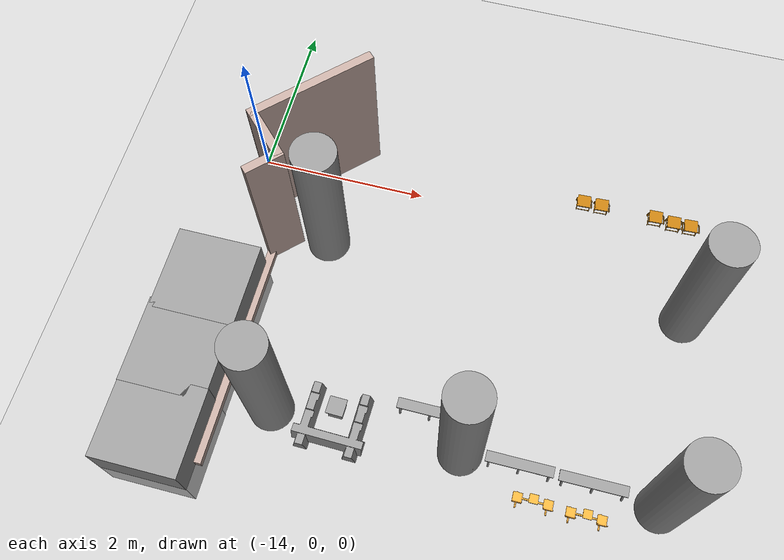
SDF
<sdf version="1.6">
 <world name="default">
  <model name="ground_plane">
   <static>1</static>
   <link name="link">
    <collision name="collision">
     <geometry><plane><normal>0 0 1</normal><size>100 100</size></plane></geometry>
     <surface>
      <contact><collide_bitmask>65535</collide_bitmask></contact>
      <friction><ode><mu>100</mu><mu2>50</mu2></ode></friction>
     </surface>
    </collision>
    <visual name="visual">
     <cast_shadows>0</cast_shadows>
     <geometry><plane><normal>0 0 1</normal><size>100 100</size></plane></geometry>
     <material>
      <script><uri>file://media/materials/scripts/gazebo.material</uri><name>Gazebo/Grey</name></script>
     </material>
    </visual>
   </link>
  </model>
  <model name="gedung_p">
   <pose>2.96636 -2.09069 0 0 -0 0</pose>
   <link name="Wall_11">
    <collision name="Wall_11_Collision">
     <geometry><box><size>1.5 0.1 2</size></box></geometry>
     <pose>0 0 1 0 -0 0</pose>
    </collision>
    <visual name="Wall_11_Visual">
     <pose>0 0 1 0 -0 0</pose>
     <geometry><box><size>1.5 0.1 2</size></box></geometry>
     <material>
      <script><uri>file://media/materials/scripts/gazebo.material</uri><name>Gazebo/Grey</name></script>
      <ambient>0.760784 0.662745 0.627451 1</ambient>
     </material>
     <meta><layer>0</layer></meta>
    </visual>
    <pose>-16.1925 2.05681 0 0 -0 0.785398</pose>
   </link>
   <link name="Wall_218">
    <collision name="Wall_218_Collision">
     <geometry><box><size>0.322262 0.2 2</size></box></geometry>
     <pose>0 0 1 0 -0 0</pose>
    </collision>
    <visual name="Wall_218_Visual">
     <pose>0 0 1 0 -0 0</pose>
     <geometry><box><size>0.322262 0.2 2</size></box></geometry>
     <material>
      <script><uri>file://media/materials/scripts/gazebo.material</uri><name>Gazebo/Grey</name></script>
      <ambient>0.760784 0.662745 0.627451 1</ambient>
     </material>
     <meta><layer>0</layer></meta>
    </visual>
    <pose>-15.9022 -1.01464 0 0 -0 0</pose>
   </link>
   <link name="Wall_220">
    <collision name="Wall_220_Collision">
     <geometry><box><size>0.330965 0.2 2</size></box></geometry>
     <pose>0 0 1 0 -0 0</pose>
    </collision>
    <visual name="Wall_220_Visual">
     <pose>0 0 1 0 -0 0</pose>
     <geometry><box><size>0.330965 0.2 2</size></box></geometry>
     <material>
      <script><uri>file://media/materials/scripts/gazebo.material</uri><name>Gazebo/Grey</name></script>
      <ambient>0.760784 0.662745 0.627451 1</ambient>
     </material>
     <meta><layer>0</layer></meta>
    </visual>
    <pose>-13.7647 -1.01253 0 0 -0 0.032247</pose>
   </link>
   <link name="Wall_223">
    <collision name="Wall_223_Collision">
     <geometry><box><size>0.33583 0.2 2</size></box></geometry>
     <pose>0 0 1 0 -0 0</pose>
    </collision>
    <visual name="Wall_223_Visual">
     <pose>0 0 1 0 -0 0</pose>
     <geometry><box><size>0.33583 0.2 2</size></box></geometry>
     <material>
      <script><uri>file://media/materials/scripts/gazebo.material</uri><name>Gazebo/Grey</name></script>
      <ambient>0.760784 0.662745 0.627451 1</ambient>
     </material>
     <meta><layer>0</layer></meta>
    </visual>
    <pose>-15.9129 1.14369 0 0 -0 3.14159</pose>
   </link>
   <link name="Wall_225">
    <collision name="Wall_225_Collision">
     <geometry><box><size>0.336699 0.2 2</size></box></geometry>
     <pose>0 0 1 0 -0 0</pose>
    </collision>
    <visual name="Wall_225_Visual">
     <pose>0 0 1 0 -0 0</pose>
     <geometry><box><size>0.336699 0.2 2</size></box></geometry>
     <material>
      <script><uri>file://media/materials/scripts/gazebo.material</uri><name>Gazebo/Grey</name></script>
      <ambient>0.760784 0.662745 0.627451 1</ambient>
     </material>
     <meta><layer>0</layer></meta>
    </visual>
    <pose>-11.6269 -1.00331 0 0 -0 0</pose>
   </link>
   <link name="Wall_266">
    <collision name="Wall_266_Collision">
     <geometry><box><size>0.33423 0.2 2</size></box></geometry>
     <pose>0 0 1 0 -0 0</pose>
    </collision>
    <visual name="Wall_266_Visual">
     <pose>0 0 1 0 -0 0</pose>
     <geometry><box><size>0.33423 0.2 2</size></box></geometry>
     <material>
      <script><uri>file://media/materials/scripts/gazebo.material</uri><name>Gazebo/Grey</name></script>
      <ambient>0.760784 0.662745 0.627451 1</ambient>
     </material>
     <meta><layer>0</layer></meta>
    </visual>
    <pose>-11.6102 1.14518 0 0 -0 0</pose>
   </link>
   <link name="Wall_5">
    <collision name="Wall_5_Collision">
     <geometry><box><size>2.7 0.1 0.1</size></box></geometry>
     <pose>0 0 0.05 0 -0 0</pose>
    </collision>
    <visual name="Wall_5_Visual">
     <pose>0 0 0.05 0 -0 0</pose>
     <geometry><box><size>2.7 0.1 0.1</size></box></geometry>
     <material>
      <script><uri>file://media/materials/scripts/gazebo.material</uri><name>Gazebo/Grey</name></script>
      <ambient>0.760784 0.662745 0.627451 1</ambient>
     </material>
     <meta><layer>0</layer></meta>
    </visual>
    <pose>-16.5105 -0.410195 0 0 -0 -1.5708</pose>
   </link>
   <link name="Wall_8">
    <collision name="Wall_8_Collision">
     <geometry><box><size>0.45 0.1 2</size></box></geometry>
     <pose>0 0 1 0 -0 0</pose>
    </collision>
    <visual name="Wall_8_Visual">
     <pose>0 0 1 0 -0 0</pose>
     <geometry><box><size>0.45 0.1 2</size></box></geometry>
     <material>
      <script><uri>file://media/materials/scripts/gazebo.material</uri><name>Gazebo/Grey</name></script>
      <ambient>0.760784 0.662745 0.627451 1</ambient>
     </material>
     <meta><layer>0</layer></meta>
    </visual>
    <pose>-16.387 1.0133 0 0 -0 0.785398</pose>
   </link>
   <link name="Wall_9">
    <collision name="Wall_9_Collision">
     <geometry><box><size>0.7 0.1 2</size></box></geometry>
     <pose>0 0 1 0 -0 0</pose>
    </collision>
    <visual name="Wall_9_Visual">
     <pose>0 0 1 0 -0 0</pose>
     <geometry><box><size>0.7 0.1 2</size></box></geometry>
     <material>
      <script><uri>file://media/materials/scripts/gazebo.material</uri><name>Gazebo/Grey</name></script>
      <ambient>0.760784 0.662745 0.627451 1</ambient>
     </material>
     <meta><layer>0</layer></meta>
    </visual>
    <pose>-16.4755 1.3493 0 0 -0 2.35502</pose>
   </link>
   <static>1</static>
  </model>
  <model name="tiang_besar">
   <link name="link_0">
    <inertial>
     <mass>1</mass>
     <inertia>
      <ixx>0.166667</ixx>
      <ixy>0</ixy>
      <ixz>0</ixz>
      <iyy>0.166667</iyy>
      <iyz>0</iyz>
      <izz>0.166667</izz>
     </inertia>
    </inertial>
    <pose>0.080543 -0.031124 0 0 -0 0</pose>
    <visual name="visual">
     <geometry>
      <mesh><uri>/home/thardi/Gazebo Objek/cylinder sedang.dae</uri><scale>1 1 1.15</scale></mesh>
     </geometry>
     <material>
      <lighting>1</lighting>
      <script><uri>file://media/materials/scripts/gazebo.material</uri><name>Gazebo/Grey</name></script>
      <shader type="vertex"><normal_map>__default__</normal_map></shader>
      <ambient>0.3 0.3 0.3 1</ambient>
      <diffuse>0.7 0.7 0.7 1</diffuse>
      <specular>0.01 0.01 0.01 1</specular>
      <emissive>0 0 0 1</emissive>
     </material>
    </visual>
    <collision name="collision">
     <geometry>
      <mesh><uri>/home/thardi/Gazebo Objek/cylinder sedang.dae</uri><scale>1 1 1.15</scale></mesh>
     </geometry>
     <surface>
      <friction>
       <ode><mu>1.15</mu><mu2>1</mu2><fdir1>0 0 0</fdir1><slip1>0</slip1><slip2>0</slip2></ode>
       <torsional>
        <coefficient>1</coefficient>
        <patch_radius>0</patch_radius>
        <surface_radius>0</surface_radius>
        <use_patch_radius>1</use_patch_radius>
        <ode><slip>0</slip></ode>
       </torsional>
      </friction>
      <bounce><restitution_coefficient>0</restitution_coefficient><threshold>1e+06</threshold></bounce>
      <contact>
       <collide_without_contact>0</collide_without_contact>
       <collide_without_contact_bitmask>1</collide_without_contact_bitmask>
       <collide_bitmask>1</collide_bitmask>
       <ode>
        <soft_cfm>0</soft_cfm>
        <soft_erp>0.2</soft_erp>
        <kp>1e+13</kp>
        <kd>1</kd>
        <max_vel>0.01</max_vel>
        <min_depth>0</min_depth>
       </ode>
       <bullet>
        <split_impulse>1</split_impulse>
        <split_impulse_penetration_threshold>-0.01</split_impulse_penetration_threshold>
        <soft_cfm>0</soft_cfm>
        <soft_erp>0.2</soft_erp>
        <kp>1e+13</kp>
        <kd>1</kd>
       </bullet>
      </contact>
     </surface>
    </collision>
   </link>
   <static>1</static>
   <pose>-13.0328 -3.02458 -3e-06 -6e-06 -6e-06 -0</pose>
  </model>
  <model name="tiang_besar_0">
   <link name="link_0">
    <inertial>
     <mass>1</mass>
     <inertia>
      <ixx>0.166667</ixx>
      <ixy>0</ixy>
      <ixz>0</ixz>
      <iyy>0.166667</iyy>
      <iyz>0</iyz>
      <izz>0.166667</izz>
     </inertia>
    </inertial>
    <pose>0.080543 -0.031124 0 0 -0 0</pose>
    <visual name="visual">
     <geometry>
      <mesh><uri>/home/thardi/Gazebo Objek/cylinder sedang.dae</uri><scale>1 1 1.15</scale></mesh>
     </geometry>
     <material>
      <lighting>1</lighting>
      <script><uri>file://media/materials/scripts/gazebo.material</uri><name>Gazebo/Grey</name></script>
      <shader type="vertex"><normal_map>__default__</normal_map></shader>
      <ambient>0.3 0.3 0.3 1</ambient>
      <diffuse>0.7 0.7 0.7 1</diffuse>
      <specular>0.01 0.01 0.01 1</specular>
      <emissive>0 0 0 1</emissive>
     </material>
    </visual>
    <collision name="collision">
     <geometry>
      <mesh><uri>/home/thardi/Gazebo Objek/cylinder sedang.dae</uri><scale>1 1 1.15</scale></mesh>
     </geometry>
     <surface>
      <friction>
       <ode><mu>1.15</mu><mu2>1</mu2><fdir1>0 0 0</fdir1><slip1>0</slip1><slip2>0</slip2></ode>
       <torsional>
        <coefficient>1</coefficient>
        <patch_radius>0</patch_radius>
        <surface_radius>0</surface_radius>
        <use_patch_radius>1</use_patch_radius>
        <ode><slip>0</slip></ode>
       </torsional>
      </friction>
      <bounce><restitution_coefficient>0</restitution_coefficient><threshold>1e+06</threshold></bounce>
      <contact>
       <collide_without_contact>0</collide_without_contact>
       <collide_without_contact_bitmask>1</collide_without_contact_bitmask>
       <collide_bitmask>1</collide_bitmask>
       <ode>
        <soft_cfm>0</soft_cfm>
        <soft_erp>0.2</soft_erp>
        <kp>1e+13</kp>
        <kd>1</kd>
        <max_vel>0.01</max_vel>
        <min_depth>0</min_depth>
       </ode>
       <bullet>
        <split_impulse>1</split_impulse>
        <split_impulse_penetration_threshold>-0.01</split_impulse_penetration_threshold>
        <soft_cfm>0</soft_cfm>
        <soft_erp>0.2</soft_erp>
        <kp>1e+13</kp>
        <kd>1</kd>
       </bullet>
      </contact>
     </surface>
    </collision>
   </link>
   <static>1</static>
   <pose>-13.0085 -0.869689 0 1e-06 1e-06 0</pose>
  </model>
  <model name="tiang_besar_1">
   <link name="link_0">
    <inertial>
     <mass>1</mass>
     <inertia>
      <ixx>0.166667</ixx>
      <ixy>0</ixy>
      <ixz>0</ixz>
      <iyy>0.166667</iyy>
      <iyz>0</iyz>
      <izz>0.166667</izz>
     </inertia>
    </inertial>
    <pose>0.080543 -0.031124 0 0 -0 0</pose>
    <visual name="visual">
     <geometry>
      <mesh><uri>/home/thardi/Gazebo Objek/cylinder sedang.dae</uri><scale>1 1 1.15</scale></mesh>
     </geometry>
     <material>
      <lighting>1</lighting>
      <script><uri>file://media/materials/scripts/gazebo.material</uri><name>Gazebo/Grey</name></script>
      <shader type="vertex"><normal_map>__default__</normal_map></shader>
      <ambient>0.3 0.3 0.3 1</ambient>
      <diffuse>0.7 0.7 0.7 1</diffuse>
      <specular>0.01 0.01 0.01 1</specular>
      <emissive>0 0 0 1</emissive>
     </material>
    </visual>
    <collision name="collision">
     <geometry>
      <mesh><uri>/home/thardi/Gazebo Objek/cylinder sedang.dae</uri><scale>1 1 1.15</scale></mesh>
     </geometry>
     <surface>
      <friction>
       <ode><mu>1.15</mu><mu2>1</mu2><fdir1>0 0 0</fdir1><slip1>0</slip1><slip2>0</slip2></ode>
       <torsional>
        <coefficient>1</coefficient>
        <patch_radius>0</patch_radius>
        <surface_radius>0</surface_radius>
        <use_patch_radius>1</use_patch_radius>
        <ode><slip>0</slip></ode>
       </torsional>
      </friction>
      <bounce><restitution_coefficient>0</restitution_coefficient><threshold>1e+06</threshold></bounce>
      <contact>
       <collide_without_contact>0</collide_without_contact>
       <collide_without_contact_bitmask>1</collide_without_contact_bitmask>
       <collide_bitmask>1</collide_bitmask>
       <ode>
        <soft_cfm>0</soft_cfm>
        <soft_erp>0.2</soft_erp>
        <kp>1e+13</kp>
        <kd>1</kd>
        <max_vel>0.01</max_vel>
        <min_depth>0</min_depth>
       </ode>
       <bullet>
        <split_impulse>1</split_impulse>
        <split_impulse_penetration_threshold>-0.01</split_impulse_penetration_threshold>
        <soft_cfm>0</soft_cfm>
        <soft_erp>0.2</soft_erp>
        <kp>1e+13</kp>
        <kd>1</kd>
       </bullet>
      </contact>
     </surface>
    </collision>
   </link>
   <static>1</static>
   <pose>-10.8868 -2.98962 -0 -1e-06 -3e-06 -0.001203</pose>
  </model>
  <model name="tiang_besar_2">
   <link name="link_0">
    <inertial>
     <mass>1</mass>
     <inertia>
      <ixx>0.166667</ixx>
      <ixy>0</ixy>
      <ixz>0</ixz>
      <iyy>0.166667</iyy>
      <iyz>0</iyz>
      <izz>0.166667</izz>
     </inertia>
    </inertial>
    <pose>0.080543 -0.031124 0 0 -0 0</pose>
    <visual name="visual">
     <geometry>
      <mesh><uri>/home/thardi/Gazebo Objek/cylinder sedang.dae</uri><scale>1 1 1.15</scale></mesh>
     </geometry>
     <material>
      <lighting>1</lighting>
      <script><uri>file://media/materials/scripts/gazebo.material</uri><name>Gazebo/Grey</name></script>
      <shader type="vertex"><normal_map>__default__</normal_map></shader>
      <ambient>0.3 0.3 0.3 1</ambient>
      <diffuse>0.7 0.7 0.7 1</diffuse>
      <specular>0.01 0.01 0.01 1</specular>
      <emissive>0 0 0 1</emissive>
     </material>
    </visual>
    <collision name="collision">
     <geometry>
      <mesh><uri>/home/thardi/Gazebo Objek/cylinder sedang.dae</uri><scale>1 1 1.15</scale></mesh>
     </geometry>
     <surface>
      <friction>
       <ode><mu>1.15</mu><mu2>1</mu2><fdir1>0 0 0</fdir1><slip1>0</slip1><slip2>0</slip2></ode>
       <torsional>
        <coefficient>1</coefficient>
        <patch_radius>0</patch_radius>
        <surface_radius>0</surface_radius>
        <use_patch_radius>1</use_patch_radius>
        <ode><slip>0</slip></ode>
       </torsional>
      </friction>
      <bounce><restitution_coefficient>0</restitution_coefficient><threshold>1e+06</threshold></bounce>
      <contact>
       <collide_without_contact>0</collide_without_contact>
       <collide_without_contact_bitmask>1</collide_without_contact_bitmask>
       <collide_bitmask>1</collide_bitmask>
       <ode>
        <soft_cfm>0</soft_cfm>
        <soft_erp>0.2</soft_erp>
        <kp>1e+13</kp>
        <kd>1</kd>
        <max_vel>0.01</max_vel>
        <min_depth>0</min_depth>
       </ode>
       <bullet>
        <split_impulse>1</split_impulse>
        <split_impulse_penetration_threshold>-0.01</split_impulse_penetration_threshold>
        <soft_cfm>0</soft_cfm>
        <soft_erp>0.2</soft_erp>
        <kp>1e+13</kp>
        <kd>1</kd>
       </bullet>
      </contact>
     </surface>
    </collision>
   </link>
   <static>1</static>
   <pose>-8.73662 -0.861969 -0 -1e-06 -2e-06 0</pose>
  </model>
  <model name="tiang_besar_3">
   <link name="link_0">
    <inertial>
     <mass>1</mass>
     <inertia>
      <ixx>0.166667</ixx>
      <ixy>0</ixy>
      <ixz>0</ixz>
      <iyy>0.166667</iyy>
      <iyz>0</iyz>
      <izz>0.166667</izz>
     </inertia>
    </inertial>
    <pose>0.080543 -0.031124 0 0 -0 0</pose>
    <visual name="visual">
     <geometry>
      <mesh><uri>/home/thardi/Gazebo Objek/cylinder sedang.dae</uri><scale>1 1 1.15</scale></mesh>
     </geometry>
     <material>
      <lighting>1</lighting>
      <script><uri>file://media/materials/scripts/gazebo.material</uri><name>Gazebo/Grey</name></script>
      <shader type="vertex"><normal_map>__default__</normal_map></shader>
      <ambient>0.3 0.3 0.3 1</ambient>
      <diffuse>0.7 0.7 0.7 1</diffuse>
      <specular>0.01 0.01 0.01 1</specular>
      <emissive>0 0 0 1</emissive>
     </material>
    </visual>
    <collision name="collision">
     <geometry>
      <mesh><uri>/home/thardi/Gazebo Objek/cylinder sedang.dae</uri><scale>1 1 1.15</scale></mesh>
     </geometry>
     <surface>
      <friction>
       <ode><mu>1.15</mu><mu2>1</mu2><fdir1>0 0 0</fdir1><slip1>0</slip1><slip2>0</slip2></ode>
       <torsional>
        <coefficient>1</coefficient>
        <patch_radius>0</patch_radius>
        <surface_radius>0</surface_radius>
        <use_patch_radius>1</use_patch_radius>
        <ode><slip>0</slip></ode>
       </torsional>
      </friction>
      <bounce><restitution_coefficient>0</restitution_coefficient><threshold>1e+06</threshold></bounce>
      <contact>
       <collide_without_contact>0</collide_without_contact>
       <collide_without_contact_bitmask>1</collide_without_contact_bitmask>
       <collide_bitmask>1</collide_bitmask>
       <ode>
        <soft_cfm>0</soft_cfm>
        <soft_erp>0.2</soft_erp>
        <kp>1e+13</kp>
        <kd>1</kd>
        <max_vel>0.01</max_vel>
        <min_depth>0</min_depth>
       </ode>
       <bullet>
        <split_impulse>1</split_impulse>
        <split_impulse_penetration_threshold>-0.01</split_impulse_penetration_threshold>
        <soft_cfm>0</soft_cfm>
        <soft_erp>0.2</soft_erp>
        <kp>1e+13</kp>
        <kd>1</kd>
       </bullet>
      </contact>
     </surface>
    </collision>
   </link>
   <static>1</static>
   <pose>-8.70463 -3.06046 -0 1e-06 -1e-06 -0.011855</pose>
  </model>
  <model name="meja_corak">
   <link name="link_0">
    <inertial>
     <mass>1</mass>
     <inertia>
      <ixx>0.166667</ixx>
      <ixy>0</ixy>
      <ixz>0</ixz>
      <iyy>0.166667</iyy>
      <iyz>0</iyz>
      <izz>0.166667</izz>
     </inertia>
    </inertial>
    <visual name="visual">
     <geometry>
      <mesh><uri>/home/thardi/Gazebo Objek/kursi corak.dae</uri><scale>0.2 0.2 0.2</scale></mesh>
     </geometry>
     <material>
      <lighting>1</lighting>
      <script><uri>file://media/materials/scripts/gazebo.material</uri><name>Gazebo/Grey</name></script>
      <shader type="vertex"><normal_map>__default__</normal_map></shader>
      <ambient>0.933 0.933 0.925 1</ambient>
      <diffuse>0.933 0.933 0.925 1</diffuse>
      <specular>0.933 0.933 0.925 1</specular>
      <emissive>0.933 0.933 0.925 1</emissive>
     </material>
    </visual>
    <collision name="collision">
     <geometry>
      <mesh><uri>/home/thardi/Gazebo Objek/kursi corak.dae</uri><scale>0.2 0.2 0.2</scale></mesh>
     </geometry>
     <surface>
      <friction>
       <ode><mu>1</mu><mu2>1</mu2><fdir1>0 0 0</fdir1><slip1>0</slip1><slip2>0</slip2></ode>
       <torsional>
        <coefficient>1</coefficient>
        <patch_radius>0</patch_radius>
        <surface_radius>0</surface_radius>
        <use_patch_radius>1</use_patch_radius>
        <ode><slip>0</slip></ode>
       </torsional>
      </friction>
      <bounce><restitution_coefficient>0</restitution_coefficient><threshold>1e+06</threshold></bounce>
      <contact>
       <collide_without_contact>0</collide_without_contact>
       <collide_without_contact_bitmask>1</collide_without_contact_bitmask>
       <collide_bitmask>1</collide_bitmask>
       <ode>
        <soft_cfm>0</soft_cfm>
        <soft_erp>0.2</soft_erp>
        <kp>1e+13</kp>
        <kd>1</kd>
        <max_vel>0.01</max_vel>
        <min_depth>0</min_depth>
       </ode>
       <bullet>
        <split_impulse>1</split_impulse>
        <split_impulse_penetration_threshold>-0.01</split_impulse_penetration_threshold>
        <soft_cfm>0</soft_cfm>
        <soft_erp>0.2</soft_erp>
        <kp>1e+13</kp>
        <kd>1</kd>
       </bullet>
      </contact>
     </surface>
    </collision>
   </link>
   <static>1</static>
   <pose>-12.2394 -3.04026 0 0 -0 3.12094</pose>
  </model>
  <model name="kursi_putih">
   <link name="link_3">
    <inertial>
     <mass>1</mass>
     <inertia>
      <ixx>0.166667</ixx>
      <ixy>0</ixy>
      <ixz>0</ixz>
      <iyy>0.166667</iyy>
      <iyz>0</iyz>
      <izz>0.166667</izz>
     </inertia>
    </inertial>
    <visual name="visual">
     <geometry>
      <mesh><uri>/home/thardi/Gazebo Objek/kursi putih.dae</uri><scale>0.15 0.15 0.15</scale></mesh>
     </geometry>
     <material>
      <lighting>1</lighting>
      <script><uri>file://media/materials/scripts/gazebo.material</uri><name>Gazebo/Grey</name></script>
      <shader type="vertex"><normal_map>__default__</normal_map></shader>
      <ambient>1 1 1 1</ambient>
      <diffuse>1 1 1 1</diffuse>
      <specular>1 1 1 1</specular>
      <emissive>1 1 1 1</emissive>
     </material>
    </visual>
    <collision name="collision">
     <geometry>
      <mesh><uri>/home/thardi/Gazebo Objek/kursi putih.dae</uri><scale>0.15 0.15 0.15</scale></mesh>
     </geometry>
     <surface>
      <friction>
       <ode><mu>1</mu><mu2>1</mu2><fdir1>0 0 0</fdir1><slip1>0</slip1><slip2>0</slip2></ode>
       <torsional>
        <coefficient>1</coefficient>
        <patch_radius>0</patch_radius>
        <surface_radius>0</surface_radius>
        <use_patch_radius>1</use_patch_radius>
        <ode><slip>0</slip></ode>
       </torsional>
      </friction>
      <bounce><restitution_coefficient>0</restitution_coefficient><threshold>1e+06</threshold></bounce>
      <contact>
       <collide_without_contact>0</collide_without_contact>
       <collide_without_contact_bitmask>1</collide_without_contact_bitmask>
       <collide_bitmask>1</collide_bitmask>
       <ode>
        <soft_cfm>0</soft_cfm>
        <soft_erp>0.2</soft_erp>
        <kp>1e+13</kp>
        <kd>1</kd>
        <max_vel>0.01</max_vel>
        <min_depth>0</min_depth>
       </ode>
       <bullet>
        <split_impulse>1</split_impulse>
        <split_impulse_penetration_threshold>-0.01</split_impulse_penetration_threshold>
        <soft_cfm>0</soft_cfm>
        <soft_erp>0.2</soft_erp>
        <kp>1e+13</kp>
        <kd>1</kd>
       </bullet>
      </contact>
     </surface>
    </collision>
   </link>
   <static>1</static>
   <pose>-11.225 -2.67918 0 0 -0 0</pose>
  </model>
  <model name="kursi_putih_0">
   <link name="link_3">
    <inertial>
     <mass>1</mass>
     <inertia>
      <ixx>0.166667</ixx>
      <ixy>0</ixy>
      <ixz>0</ixz>
      <iyy>0.166667</iyy>
      <iyz>0</iyz>
      <izz>0.166667</izz>
     </inertia>
    </inertial>
    <visual name="visual">
     <geometry>
      <mesh><uri>/home/thardi/Gazebo Objek/kursi putih.dae</uri><scale>0.15 0.15 0.15</scale></mesh>
     </geometry>
     <material>
      <lighting>1</lighting>
      <script><uri>file://media/materials/scripts/gazebo.material</uri><name>Gazebo/Grey</name></script>
      <shader type="vertex"><normal_map>__default__</normal_map></shader>
      <ambient>1 1 1 1</ambient>
      <diffuse>1 1 1 1</diffuse>
      <specular>1 1 1 1</specular>
      <emissive>1 1 1 1</emissive>
     </material>
    </visual>
    <collision name="collision">
     <geometry>
      <mesh><uri>/home/thardi/Gazebo Objek/kursi putih.dae</uri><scale>0.15 0.15 0.15</scale></mesh>
     </geometry>
     <surface>
      <friction>
       <ode><mu>1</mu><mu2>1</mu2><fdir1>0 0 0</fdir1><slip1>0</slip1><slip2>0</slip2></ode>
       <torsional>
        <coefficient>1</coefficient>
        <patch_radius>0</patch_radius>
        <surface_radius>0</surface_radius>
        <use_patch_radius>1</use_patch_radius>
        <ode><slip>0</slip></ode>
       </torsional>
      </friction>
      <bounce><restitution_coefficient>0</restitution_coefficient><threshold>1e+06</threshold></bounce>
      <contact>
       <collide_without_contact>0</collide_without_contact>
       <collide_without_contact_bitmask>1</collide_without_contact_bitmask>
       <collide_bitmask>1</collide_bitmask>
       <ode>
        <soft_cfm>0</soft_cfm>
        <soft_erp>0.2</soft_erp>
        <kp>1e+13</kp>
        <kd>1</kd>
        <max_vel>0.01</max_vel>
        <min_depth>0</min_depth>
       </ode>
       <bullet>
        <split_impulse>1</split_impulse>
        <split_impulse_penetration_threshold>-0.01</split_impulse_penetration_threshold>
        <soft_cfm>0</soft_cfm>
        <soft_erp>0.2</soft_erp>
        <kp>1e+13</kp>
        <kd>1</kd>
       </bullet>
      </contact>
     </surface>
    </collision>
   </link>
   <static>1</static>
   <pose>-10.1518 -3.01553 0 0 -0 0</pose>
  </model>
  <model name="kursi_putih_1">
   <link name="link_3">
    <inertial>
     <mass>1</mass>
     <inertia>
      <ixx>0.166667</ixx>
      <ixy>0</ixy>
      <ixz>0</ixz>
      <iyy>0.166667</iyy>
      <iyz>0</iyz>
      <izz>0.166667</izz>
     </inertia>
    </inertial>
    <visual name="visual">
     <geometry>
      <mesh><uri>/home/thardi/Gazebo Objek/kursi putih.dae</uri><scale>0.15 0.15 0.15</scale></mesh>
     </geometry>
     <material>
      <lighting>1</lighting>
      <script><uri>file://media/materials/scripts/gazebo.material</uri><name>Gazebo/Grey</name></script>
      <shader type="vertex"><normal_map>__default__</normal_map></shader>
      <ambient>1 1 1 1</ambient>
      <diffuse>1 1 1 1</diffuse>
      <specular>1 1 1 1</specular>
      <emissive>1 1 1 1</emissive>
     </material>
    </visual>
    <collision name="collision">
     <geometry>
      <mesh><uri>/home/thardi/Gazebo Objek/kursi putih.dae</uri><scale>0.15 0.15 0.15</scale></mesh>
     </geometry>
     <surface>
      <friction>
       <ode><mu>1</mu><mu2>1</mu2><fdir1>0 0 0</fdir1><slip1>0</slip1><slip2>0</slip2></ode>
       <torsional>
        <coefficient>1</coefficient>
        <patch_radius>0</patch_radius>
        <surface_radius>0</surface_radius>
        <use_patch_radius>1</use_patch_radius>
        <ode><slip>0</slip></ode>
       </torsional>
      </friction>
      <bounce><restitution_coefficient>0</restitution_coefficient><threshold>1e+06</threshold></bounce>
      <contact>
       <collide_without_contact>0</collide_without_contact>
       <collide_without_contact_bitmask>1</collide_without_contact_bitmask>
       <collide_bitmask>1</collide_bitmask>
       <ode>
        <soft_cfm>0</soft_cfm>
        <soft_erp>0.2</soft_erp>
        <kp>1e+13</kp>
        <kd>1</kd>
        <max_vel>0.01</max_vel>
        <min_depth>0</min_depth>
       </ode>
       <bullet>
        <split_impulse>1</split_impulse>
        <split_impulse_penetration_threshold>-0.01</split_impulse_penetration_threshold>
        <soft_cfm>0</soft_cfm>
        <soft_erp>0.2</soft_erp>
        <kp>1e+13</kp>
        <kd>1</kd>
       </bullet>
      </contact>
     </surface>
    </collision>
   </link>
   <static>1</static>
   <pose>-9.34597 -3.02409 0 0 -0 0</pose>
  </model>
  <model name="kursi_sambung_2_1">
   <link name="link_4">
    <inertial>
     <mass>1</mass>
     <inertia>
      <ixx>0.166667</ixx>
      <ixy>0</ixy>
      <ixz>0</ixz>
      <iyy>0.166667</iyy>
      <iyz>0</iyz>
      <izz>0.166667</izz>
     </inertia>
    </inertial>
    <visual name="visual">
     <geometry>
      <mesh><uri>/home/thardi/Gazebo Objek/kursi sambung 2.dae</uri><scale>0.07 0.07 0.07</scale></mesh>
     </geometry>
     <material>
      <lighting>1</lighting>
      <script><uri>file://media/materials/scripts/gazebo.material</uri><name>Gazebo/Grey</name></script>
      <shader type="vertex"><normal_map>__default__</normal_map></shader>
      <ambient>0.988 0.686 0.243 1</ambient>
      <diffuse>0.988 0.686 0.243 1</diffuse>
      <specular>0.988 0.686 0.243 1</specular>
      <emissive>0.988 0.686 0.243 1</emissive>
     </material>
    </visual>
    <collision name="collision">
     <geometry>
      <mesh><uri>/home/thardi/Gazebo Objek/kursi sambung 2.dae</uri><scale>0.07 0.07 0.07</scale></mesh>
     </geometry>
     <surface>
      <friction>
       <ode><mu>1</mu><mu2>1</mu2><fdir1>0 0 0</fdir1><slip1>0</slip1><slip2>0</slip2></ode>
       <torsional>
        <coefficient>1</coefficient>
        <patch_radius>0</patch_radius>
        <surface_radius>0</surface_radius>
        <use_patch_radius>1</use_patch_radius>
        <ode><slip>0</slip></ode>
       </torsional>
      </friction>
      <bounce><restitution_coefficient>0</restitution_coefficient><threshold>1e+06</threshold></bounce>
      <contact>
       <collide_without_contact>0</collide_without_contact>
       <collide_without_contact_bitmask>1</collide_without_contact_bitmask>
       <collide_bitmask>1</collide_bitmask>
       <ode>
        <soft_cfm>0</soft_cfm>
        <soft_erp>0.2</soft_erp>
        <kp>1e+13</kp>
        <kd>1</kd>
        <max_vel>0.01</max_vel>
        <min_depth>0</min_depth>
       </ode>
       <bullet>
        <split_impulse>1</split_impulse>
        <split_impulse_penetration_threshold>-0.01</split_impulse_penetration_threshold>
        <soft_cfm>0</soft_cfm>
        <soft_erp>0.2</soft_erp>
        <kp>1e+13</kp>
        <kd>1</kd>
       </bullet>
      </contact>
     </surface>
    </collision>
   </link>
   <static>1</static>
   <pose>-9.58721 -3.29085 0 0 -0 0</pose>
  </model>
  <model name="kursi_sambung_2_2">
   <link name="link_4">
    <inertial>
     <mass>1</mass>
     <inertia>
      <ixx>0.166667</ixx>
      <ixy>0</ixy>
      <ixz>0</ixz>
      <iyy>0.166667</iyy>
      <iyz>0</iyz>
      <izz>0.166667</izz>
     </inertia>
    </inertial>
    <visual name="visual">
     <geometry>
      <mesh><uri>/home/thardi/Gazebo Objek/kursi sambung 2.dae</uri><scale>0.07 0.07 0.07</scale></mesh>
     </geometry>
     <material>
      <lighting>1</lighting>
      <script><uri>file://media/materials/scripts/gazebo.material</uri><name>Gazebo/Grey</name></script>
      <shader type="vertex"><normal_map>__default__</normal_map></shader>
      <ambient>0.988 0.686 0.243 1</ambient>
      <diffuse>0.988 0.686 0.243 1</diffuse>
      <specular>0.988 0.686 0.243 1</specular>
      <emissive>0.988 0.686 0.243 1</emissive>
     </material>
    </visual>
    <collision name="collision">
     <geometry>
      <mesh><uri>/home/thardi/Gazebo Objek/kursi sambung 2.dae</uri><scale>0.07 0.07 0.07</scale></mesh>
     </geometry>
     <surface>
      <friction>
       <ode><mu>1</mu><mu2>1</mu2><fdir1>0 0 0</fdir1><slip1>0</slip1><slip2>0</slip2></ode>
       <torsional>
        <coefficient>1</coefficient>
        <patch_radius>0</patch_radius>
        <surface_radius>0</surface_radius>
        <use_patch_radius>1</use_patch_radius>
        <ode><slip>0</slip></ode>
       </torsional>
      </friction>
      <bounce><restitution_coefficient>0</restitution_coefficient><threshold>1e+06</threshold></bounce>
      <contact>
       <collide_without_contact>0</collide_without_contact>
       <collide_without_contact_bitmask>1</collide_without_contact_bitmask>
       <collide_bitmask>1</collide_bitmask>
       <ode>
        <soft_cfm>0</soft_cfm>
        <soft_erp>0.2</soft_erp>
        <kp>1e+13</kp>
        <kd>1</kd>
        <max_vel>0.01</max_vel>
        <min_depth>0</min_depth>
       </ode>
       <bullet>
        <split_impulse>1</split_impulse>
        <split_impulse_penetration_threshold>-0.01</split_impulse_penetration_threshold>
        <soft_cfm>0</soft_cfm>
        <soft_erp>0.2</soft_erp>
        <kp>1e+13</kp>
        <kd>1</kd>
       </bullet>
      </contact>
     </surface>
    </collision>
   </link>
   <static>1</static>
   <pose>-10.1623 -3.27416 0 0 -0 0</pose>
  </model>
  <model name="kursi_kantin">
   <link name="link_1">
    <inertial>
     <mass>1</mass>
     <inertia>
      <ixx>0.166667</ixx>
      <ixy>0</ixy>
      <ixz>0</ixz>
      <iyy>0.166667</iyy>
      <iyz>0</iyz>
      <izz>0.166667</izz>
     </inertia>
    </inertial>
    <visual name="visual">
     <geometry>
      <mesh><uri>/home/thardi/Gazebo Objek/kursi kantin.dae</uri><scale>0.2 0.2 0.2</scale></mesh>
     </geometry>
     <material>
      <lighting>1</lighting>
      <script><uri>file://media/materials/scripts/gazebo.material</uri><name>Gazebo/Grey</name></script>
      <shader type="vertex"><normal_map>__default__</normal_map></shader>
      <ambient>0.757 0.49 0.067 1</ambient>
      <diffuse>0.757 0.49 0.067 1</diffuse>
      <specular>0.757 0.49 0.067 1</specular>
      <emissive>0.757 0.49 0.067 1</emissive>
     </material>
    </visual>
    <collision name="collision">
     <geometry>
      <mesh><uri>/home/thardi/Gazebo Objek/kursi kantin.dae</uri><scale>0.2 0.2 0.2</scale></mesh>
     </geometry>
     <surface>
      <friction>
       <ode><mu>1</mu><mu2>1</mu2><fdir1>0 0 0</fdir1><slip1>0</slip1><slip2>0</slip2></ode>
       <torsional>
        <coefficient>1</coefficient>
        <patch_radius>0</patch_radius>
        <surface_radius>0</surface_radius>
        <use_patch_radius>1</use_patch_radius>
        <ode><slip>0</slip></ode>
       </torsional>
      </friction>
      <bounce><restitution_coefficient>0</restitution_coefficient><threshold>1e+06</threshold></bounce>
      <contact>
       <collide_without_contact>0</collide_without_contact>
       <collide_without_contact_bitmask>1</collide_without_contact_bitmask>
       <collide_bitmask>1</collide_bitmask>
       <ode>
        <soft_cfm>0</soft_cfm>
        <soft_erp>0.2</soft_erp>
        <kp>1e+13</kp>
        <kd>1</kd>
        <max_vel>0.01</max_vel>
        <min_depth>0</min_depth>
       </ode>
       <bullet>
        <split_impulse>1</split_impulse>
        <split_impulse_penetration_threshold>-0.01</split_impulse_penetration_threshold>
        <soft_cfm>0</soft_cfm>
        <soft_erp>0.2</soft_erp>
        <kp>1e+13</kp>
        <kd>1</kd>
       </bullet>
      </contact>
     </surface>
    </collision>
   </link>
   <static>1</static>
   <pose>-10.0257 0.360954 0 0 -0 1.61354</pose>
  </model>
  <model name="kursi_kantin_clone">
   <link name="link_1">
    <inertial>
     <mass>1</mass>
     <inertia>
      <ixx>0.166667</ixx>
      <ixy>0</ixy>
      <ixz>0</ixz>
      <iyy>0.166667</iyy>
      <iyz>0</iyz>
      <izz>0.166667</izz>
     </inertia>
    </inertial>
    <visual name="visual">
     <geometry>
      <mesh><uri>/home/thardi/Gazebo Objek/kursi kantin.dae</uri><scale>0.2 0.2 0.2</scale></mesh>
     </geometry>
     <material>
      <lighting>1</lighting>
      <script><uri>file://media/materials/scripts/gazebo.material</uri><name>Gazebo/Grey</name></script>
      <shader type="vertex"><normal_map>__default__</normal_map></shader>
      <ambient>0.757 0.49 0.067 1</ambient>
      <diffuse>0.757 0.49 0.067 1</diffuse>
      <specular>0.757 0.49 0.067 1</specular>
      <emissive>0.757 0.49 0.067 1</emissive>
     </material>
    </visual>
    <collision name="collision">
     <geometry>
      <mesh><uri>/home/thardi/Gazebo Objek/kursi kantin.dae</uri><scale>0.2 0.2 0.2</scale></mesh>
     </geometry>
     <surface>
      <friction>
       <ode><mu>1</mu><mu2>1</mu2><fdir1>0 0 0</fdir1><slip1>0</slip1><slip2>0</slip2></ode>
       <torsional>
        <coefficient>1</coefficient>
        <patch_radius>0</patch_radius>
        <surface_radius>0</surface_radius>
        <use_patch_radius>1</use_patch_radius>
        <ode><slip>0</slip></ode>
       </torsional>
      </friction>
      <bounce><restitution_coefficient>0</restitution_coefficient><threshold>1e+06</threshold></bounce>
      <contact>
       <collide_without_contact>0</collide_without_contact>
       <collide_without_contact_bitmask>1</collide_without_contact_bitmask>
       <collide_bitmask>1</collide_bitmask>
       <ode>
        <soft_cfm>0</soft_cfm>
        <soft_erp>0.2</soft_erp>
        <kp>1e+13</kp>
        <kd>1</kd>
        <max_vel>0.01</max_vel>
        <min_depth>0</min_depth>
       </ode>
       <bullet>
        <split_impulse>1</split_impulse>
        <split_impulse_penetration_threshold>-0.01</split_impulse_penetration_threshold>
        <soft_cfm>0</soft_cfm>
        <soft_erp>0.2</soft_erp>
        <kp>1e+13</kp>
        <kd>1</kd>
       </bullet>
      </contact>
     </surface>
    </collision>
   </link>
   <static>1</static>
   <pose>-9.80781 0.362748 0 0 -0 1.61354</pose>
  </model>
  <model name="kursi_kantin_clone_1">
   <link name="link_1">
    <inertial>
     <mass>1</mass>
     <inertia>
      <ixx>0.166667</ixx>
      <ixy>0</ixy>
      <ixz>0</ixz>
      <iyy>0.166667</iyy>
      <iyz>0</iyz>
      <izz>0.166667</izz>
     </inertia>
    </inertial>
    <visual name="visual">
     <geometry>
      <mesh><uri>/home/thardi/Gazebo Objek/kursi kantin.dae</uri><scale>0.2 0.2 0.2</scale></mesh>
     </geometry>
     <material>
      <lighting>1</lighting>
      <script><uri>file://media/materials/scripts/gazebo.material</uri><name>Gazebo/Grey</name></script>
      <shader type="vertex"><normal_map>__default__</normal_map></shader>
      <ambient>0.757 0.49 0.067 1</ambient>
      <diffuse>0.757 0.49 0.067 1</diffuse>
      <specular>0.757 0.49 0.067 1</specular>
      <emissive>0.757 0.49 0.067 1</emissive>
     </material>
    </visual>
    <collision name="collision">
     <geometry>
      <mesh><uri>/home/thardi/Gazebo Objek/kursi kantin.dae</uri><scale>0.2 0.2 0.2</scale></mesh>
     </geometry>
     <surface>
      <friction>
       <ode><mu>1</mu><mu2>1</mu2><fdir1>0 0 0</fdir1><slip1>0</slip1><slip2>0</slip2></ode>
       <torsional>
        <coefficient>1</coefficient>
        <patch_radius>0</patch_radius>
        <surface_radius>0</surface_radius>
        <use_patch_radius>1</use_patch_radius>
        <ode><slip>0</slip></ode>
       </torsional>
      </friction>
      <bounce><restitution_coefficient>0</restitution_coefficient><threshold>1e+06</threshold></bounce>
      <contact>
       <collide_without_contact>0</collide_without_contact>
       <collide_without_contact_bitmask>1</collide_without_contact_bitmask>
       <collide_bitmask>1</collide_bitmask>
       <ode>
        <soft_cfm>0</soft_cfm>
        <soft_erp>0.2</soft_erp>
        <kp>1e+13</kp>
        <kd>1</kd>
        <max_vel>0.01</max_vel>
        <min_depth>0</min_depth>
       </ode>
       <bullet>
        <split_impulse>1</split_impulse>
        <split_impulse_penetration_threshold>-0.01</split_impulse_penetration_threshold>
        <soft_cfm>0</soft_cfm>
        <soft_erp>0.2</soft_erp>
        <kp>1e+13</kp>
        <kd>1</kd>
       </bullet>
      </contact>
     </surface>
    </collision>
   </link>
   <static>1</static>
   <pose>-9.1419 0.361024 0 0 -0 1.61354</pose>
  </model>
  <model name="kursi_kantin_clone_2">
   <link name="link_1">
    <inertial>
     <mass>1</mass>
     <inertia>
      <ixx>0.166667</ixx>
      <ixy>0</ixy>
      <ixz>0</ixz>
      <iyy>0.166667</iyy>
      <iyz>0</iyz>
      <izz>0.166667</izz>
     </inertia>
    </inertial>
    <visual name="visual">
     <geometry>
      <mesh><uri>/home/thardi/Gazebo Objek/kursi kantin.dae</uri><scale>0.2 0.2 0.2</scale></mesh>
     </geometry>
     <material>
      <lighting>1</lighting>
      <script><uri>file://media/materials/scripts/gazebo.material</uri><name>Gazebo/Grey</name></script>
      <shader type="vertex"><normal_map>__default__</normal_map></shader>
      <ambient>0.757 0.49 0.067 1</ambient>
      <diffuse>0.757 0.49 0.067 1</diffuse>
      <specular>0.757 0.49 0.067 1</specular>
      <emissive>0.757 0.49 0.067 1</emissive>
     </material>
    </visual>
    <collision name="collision">
     <geometry>
      <mesh><uri>/home/thardi/Gazebo Objek/kursi kantin.dae</uri><scale>0.2 0.2 0.2</scale></mesh>
     </geometry>
     <surface>
      <friction>
       <ode><mu>1</mu><mu2>1</mu2><fdir1>0 0 0</fdir1><slip1>0</slip1><slip2>0</slip2></ode>
       <torsional>
        <coefficient>1</coefficient>
        <patch_radius>0</patch_radius>
        <surface_radius>0</surface_radius>
        <use_patch_radius>1</use_patch_radius>
        <ode><slip>0</slip></ode>
       </torsional>
      </friction>
      <bounce><restitution_coefficient>0</restitution_coefficient><threshold>1e+06</threshold></bounce>
      <contact>
       <collide_without_contact>0</collide_without_contact>
       <collide_without_contact_bitmask>1</collide_without_contact_bitmask>
       <collide_bitmask>1</collide_bitmask>
       <ode>
        <soft_cfm>0</soft_cfm>
        <soft_erp>0.2</soft_erp>
        <kp>1e+13</kp>
        <kd>1</kd>
        <max_vel>0.01</max_vel>
        <min_depth>0</min_depth>
       </ode>
       <bullet>
        <split_impulse>1</split_impulse>
        <split_impulse_penetration_threshold>-0.01</split_impulse_penetration_threshold>
        <soft_cfm>0</soft_cfm>
        <soft_erp>0.2</soft_erp>
        <kp>1e+13</kp>
        <kd>1</kd>
       </bullet>
      </contact>
     </surface>
    </collision>
   </link>
   <static>1</static>
   <pose>-8.91686 0.339724 0 0 -0 1.61354</pose>
  </model>
  <model name="kursi_kantin_clone_3">
   <link name="link_1">
    <inertial>
     <mass>1</mass>
     <inertia>
      <ixx>0.166667</ixx>
      <ixy>0</ixy>
      <ixz>0</ixz>
      <iyy>0.166667</iyy>
      <iyz>0</iyz>
      <izz>0.166667</izz>
     </inertia>
    </inertial>
    <visual name="visual">
     <geometry>
      <mesh><uri>/home/thardi/Gazebo Objek/kursi kantin.dae</uri><scale>0.2 0.2 0.2</scale></mesh>
     </geometry>
     <material>
      <lighting>1</lighting>
      <script><uri>file://media/materials/scripts/gazebo.material</uri><name>Gazebo/Grey</name></script>
      <shader type="vertex"><normal_map>__default__</normal_map></shader>
      <ambient>0.757 0.49 0.067 1</ambient>
      <diffuse>0.757 0.49 0.067 1</diffuse>
      <specular>0.757 0.49 0.067 1</specular>
      <emissive>0.757 0.49 0.067 1</emissive>
     </material>
    </visual>
    <collision name="collision">
     <geometry>
      <mesh><uri>/home/thardi/Gazebo Objek/kursi kantin.dae</uri><scale>0.2 0.2 0.2</scale></mesh>
     </geometry>
     <surface>
      <friction>
       <ode><mu>1</mu><mu2>1</mu2><fdir1>0 0 0</fdir1><slip1>0</slip1><slip2>0</slip2></ode>
       <torsional>
        <coefficient>1</coefficient>
        <patch_radius>0</patch_radius>
        <surface_radius>0</surface_radius>
        <use_patch_radius>1</use_patch_radius>
        <ode><slip>0</slip></ode>
       </torsional>
      </friction>
      <bounce><restitution_coefficient>0</restitution_coefficient><threshold>1e+06</threshold></bounce>
      <contact>
       <collide_without_contact>0</collide_without_contact>
       <collide_without_contact_bitmask>1</collide_without_contact_bitmask>
       <collide_bitmask>1</collide_bitmask>
       <ode>
        <soft_cfm>0</soft_cfm>
        <soft_erp>0.2</soft_erp>
        <kp>1e+13</kp>
        <kd>1</kd>
        <max_vel>0.01</max_vel>
        <min_depth>0</min_depth>
       </ode>
       <bullet>
        <split_impulse>1</split_impulse>
        <split_impulse_penetration_threshold>-0.01</split_impulse_penetration_threshold>
        <soft_cfm>0</soft_cfm>
        <soft_erp>0.2</soft_erp>
        <kp>1e+13</kp>
        <kd>1</kd>
       </bullet>
      </contact>
     </surface>
    </collision>
   </link>
   <static>1</static>
   <pose>-8.71119 0.340505 0 0 -0 1.61354</pose>
  </model>
  <model name="blok_1">
   <link name="link_0">
    <inertial>
     <mass>1</mass>
     <inertia>
      <ixx>0.166667</ixx>
      <ixy>0</ixy>
      <ixz>0</ixz>
      <iyy>0.166667</iyy>
      <iyz>0</iyz>
      <izz>0.166667</izz>
     </inertia>
    </inertial>
    <visual name="visual">
     <geometry><box><size>1 1 1</size></box></geometry>
     <material>
      <lighting>1</lighting>
      <script><uri>file://media/materials/scripts/gazebo.material</uri><name>Gazebo/Grey</name></script>
      <shader type="vertex"><normal_map>__default__</normal_map></shader>
      <ambient>0.3 0.3 0.3 1</ambient>
      <diffuse>0.7 0.7 0.7 1</diffuse>
      <specular>0.01 0.01 0.01 1</specular>
      <emissive>0 0 0 1</emissive>
     </material>
    </visual>
    <collision name="collision">
     <geometry><box><size>1 1 1</size></box></geometry>
     <surface>
      <friction>
       <ode><mu>1</mu><mu2>1</mu2><fdir1>0 0 0</fdir1><slip1>0</slip1><slip2>0</slip2></ode>
       <torsional>
        <coefficient>1</coefficient>
        <patch_radius>0</patch_radius>
        <surface_radius>0</surface_radius>
        <use_patch_radius>1</use_patch_radius>
        <ode><slip>0</slip></ode>
       </torsional>
      </friction>
      <bounce><restitution_coefficient>0</restitution_coefficient><threshold>1e+06</threshold></bounce>
      <contact>
       <collide_without_contact>0</collide_without_contact>
       <collide_without_contact_bitmask>1</collide_without_contact_bitmask>
       <collide_bitmask>1</collide_bitmask>
       <ode>
        <soft_cfm>0</soft_cfm>
        <soft_erp>0.2</soft_erp>
        <kp>1e+13</kp>
        <kd>1</kd>
        <max_vel>0.01</max_vel>
        <min_depth>0</min_depth>
       </ode>
       <bullet>
        <split_impulse>1</split_impulse>
        <split_impulse_penetration_threshold>-0.01</split_impulse_penetration_threshold>
        <soft_cfm>0</soft_cfm>
        <soft_erp>0.2</soft_erp>
        <kp>1e+13</kp>
        <kd>1</kd>
       </bullet>
      </contact>
     </surface>
    </collision>
   </link>
   <static>1</static>
   <pose>-14.0748 -3.63515 0 0 -0 0</pose>
  </model>
  <model name="blok_2">
   <link name="link_0">
    <inertial>
     <mass>1</mass>
     <inertia>
      <ixx>0.166667</ixx>
      <ixy>0</ixy>
      <ixz>0</ixz>
      <iyy>0.166667</iyy>
      <iyz>0</iyz>
      <izz>0.166667</izz>
     </inertia>
    </inertial>
    <visual name="visual">
     <geometry><box><size>1 1 1</size></box></geometry>
     <material>
      <lighting>1</lighting>
      <script><uri>file://media/materials/scripts/gazebo.material</uri><name>Gazebo/Grey</name></script>
      <shader type="vertex"><normal_map>__default__</normal_map></shader>
      <ambient>0.3 0.3 0.3 1</ambient>
      <diffuse>0.7 0.7 0.7 1</diffuse>
      <specular>0.01 0.01 0.01 1</specular>
      <emissive>0 0 0 1</emissive>
     </material>
    </visual>
    <collision name="collision">
     <geometry><box><size>1 1 1</size></box></geometry>
     <surface>
      <friction>
       <ode><mu>1</mu><mu2>1</mu2><fdir1>0 0 0</fdir1><slip1>0</slip1><slip2>0</slip2></ode>
       <torsional>
        <coefficient>1</coefficient>
        <patch_radius>0</patch_radius>
        <surface_radius>0</surface_radius>
        <use_patch_radius>1</use_patch_radius>
        <ode><slip>0</slip></ode>
       </torsional>
      </friction>
      <bounce><restitution_coefficient>0</restitution_coefficient><threshold>1e+06</threshold></bounce>
      <contact>
       <collide_without_contact>0</collide_without_contact>
       <collide_without_contact_bitmask>1</collide_without_contact_bitmask>
       <collide_bitmask>1</collide_bitmask>
       <ode>
        <soft_cfm>0</soft_cfm>
        <soft_erp>0.2</soft_erp>
        <kp>1e+13</kp>
        <kd>1</kd>
        <max_vel>0.01</max_vel>
        <min_depth>0</min_depth>
       </ode>
       <bullet>
        <split_impulse>1</split_impulse>
        <split_impulse_penetration_threshold>-0.01</split_impulse_penetration_threshold>
        <soft_cfm>0</soft_cfm>
        <soft_erp>0.2</soft_erp>
        <kp>1e+13</kp>
        <kd>1</kd>
       </bullet>
      </contact>
     </surface>
    </collision>
   </link>
   <static>1</static>
   <pose>-14.0804 -2.77742 0 0 -0 0</pose>
  </model>
  <model name="blok_3">
   <link name="link_0">
    <inertial>
     <mass>1</mass>
     <inertia>
      <ixx>0.166667</ixx>
      <ixy>0</ixy>
      <ixz>0</ixz>
      <iyy>0.166667</iyy>
      <iyz>0</iyz>
      <izz>0.166667</izz>
     </inertia>
    </inertial>
    <visual name="visual">
     <geometry><box><size>1 1 1</size></box></geometry>
     <material>
      <lighting>1</lighting>
      <script><uri>file://media/materials/scripts/gazebo.material</uri><name>Gazebo/Grey</name></script>
      <shader type="vertex"><normal_map>__default__</normal_map></shader>
      <ambient>0.3 0.3 0.3 1</ambient>
      <diffuse>0.7 0.7 0.7 1</diffuse>
      <specular>0.01 0.01 0.01 1</specular>
      <emissive>0 0 0 1</emissive>
     </material>
    </visual>
    <collision name="collision">
     <geometry><box><size>1 1 1</size></box></geometry>
     <surface>
      <friction>
       <ode><mu>1</mu><mu2>1</mu2><fdir1>0 0 0</fdir1><slip1>0</slip1><slip2>0</slip2></ode>
       <torsional>
        <coefficient>1</coefficient>
        <patch_radius>0</patch_radius>
        <surface_radius>0</surface_radius>
        <use_patch_radius>1</use_patch_radius>
        <ode><slip>0</slip></ode>
       </torsional>
      </friction>
      <bounce><restitution_coefficient>0</restitution_coefficient><threshold>1e+06</threshold></bounce>
      <contact>
       <collide_without_contact>0</collide_without_contact>
       <collide_without_contact_bitmask>1</collide_without_contact_bitmask>
       <collide_bitmask>1</collide_bitmask>
       <ode>
        <soft_cfm>0</soft_cfm>
        <soft_erp>0.2</soft_erp>
        <kp>1e+13</kp>
        <kd>1</kd>
        <max_vel>0.01</max_vel>
        <min_depth>0</min_depth>
       </ode>
       <bullet>
        <split_impulse>1</split_impulse>
        <split_impulse_penetration_threshold>-0.01</split_impulse_penetration_threshold>
        <soft_cfm>0</soft_cfm>
        <soft_erp>0.2</soft_erp>
        <kp>1e+13</kp>
        <kd>1</kd>
       </bullet>
      </contact>
     </surface>
    </collision>
   </link>
   <static>1</static>
   <pose>-14.0661 -1.88335 0 0 -0 0</pose>
  </model>
 </world>
</sdf>
